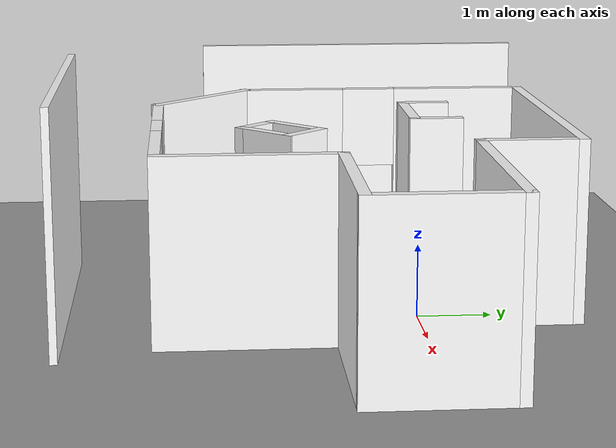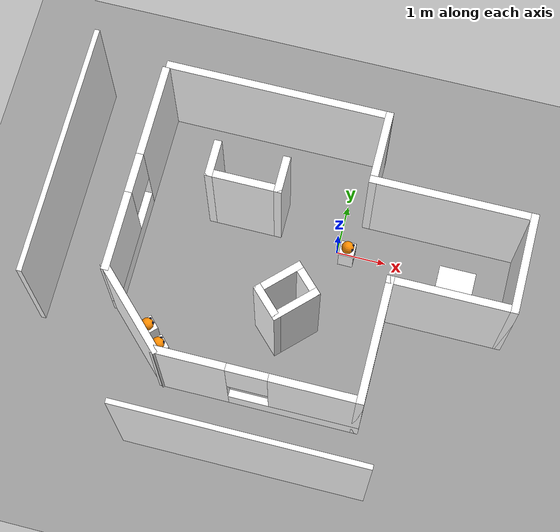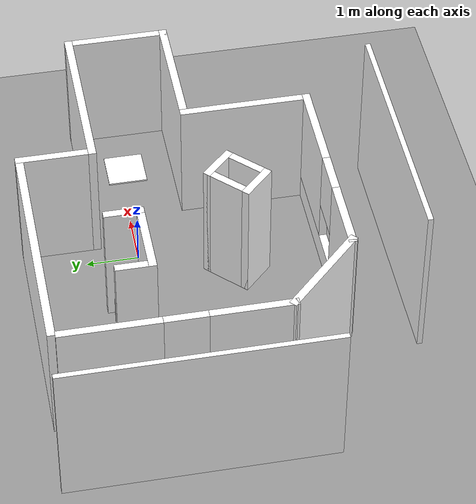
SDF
<sdf version="1.6">
 <world name="default">
  <light name="sun" type="directional">
   <pose>0 0 10 0 -0 0</pose>
   <diffuse>0.8 0.8 0.8 1</diffuse>
   <specular>0.2 0.2 0.2 1</specular>
   <attenuation>
    <range>1000</range>
    <constant>0.9</constant>
    <linear>0.01</linear>
    <quadratic>0.001</quadratic>
   </attenuation>
   <direction>-0.5 0.1 -0.9</direction>
  </light>
  <model name="ground_plane">
   <static>1</static>
   <link name="link">
    <collision name="collision">
     <geometry><plane><normal>0 0 1</normal><size>100 100</size></plane></geometry>
     <surface><friction><ode><mu>100</mu><mu2>50</mu2></ode></friction></surface>
    </collision>
    <visual name="visual">
     <cast_shadows>0</cast_shadows>
     <geometry><plane><normal>0 0 1</normal><size>100 100</size></plane></geometry>
     <material>
      <ambient>1 0 0 1</ambient>
      <diffuse>0.6 0.6 0.6 1</diffuse>
      <specular>0.1 0.1 0.1 1</specular>
     </material>
    </visual>
   </link>
  </model>
  <gravity>0 0 -9.8</gravity>
  <magnetic_field>6e-06 2.3e-05 -4.2e-05</magnetic_field>
  <atmosphere type="adiabatic"/>
  <physics name="default_physics" default="0" type="ode">
   <max_step_size>0.001</max_step_size>
   <real_time_factor>1</real_time_factor>
   <real_time_update_rate>1000</real_time_update_rate>
  </physics>
  <scene><ambient>0.4 0.4 0.4 1</ambient><background>0.7 0.7 0.7 1</background><shadows>1</shadows></scene>
  <audio><device>default</device></audio>
  <spherical_coordinates>
   <surface_model>EARTH_WGS84</surface_model>
   <latitude_deg>0</latitude_deg>
   <longitude_deg>0</longitude_deg>
   <elevation>0</elevation>
   <heading_deg>0</heading_deg>
  </spherical_coordinates>
  <model name="room">
   <pose>-0.22644 -0.704241 0 0 -0 0</pose>
   <link name="Wall_18">
    <pose>-3.73854 0.598681 0 0 -0 -1.5708</pose>
    <visual name="Wall_18_Visual_0">
     <pose>-1.19247 0 1.25 0 -0 0</pose>
     <geometry><box><size>1.86506 0.15 2.5</size></box></geometry>
     <material>
      <ambient>1 1 1 1</ambient>
      <diffuse>1 1 1 1</diffuse>
      <specular>0 0 0 1</specular>
      <pbr><metal><albedo_map>../models/bricks.png</albedo_map></metal></pbr>
     </material>
     <meta><layer>0</layer></meta>
    </visual>
    <collision name="Wall_18_Collision_0">
     <geometry><box><size>1.86506 0.15 2.5</size></box></geometry>
     <pose>-1.19247 0 1.25 0 -0 0</pose>
    </collision>
    <visual name="Wall_18_Visual_1">
     <pose>0.93253 0 0.25 0 -0 0</pose>
     <geometry><box><size>2.38494 0.15 0.5</size></box></geometry>
     <material>
      <ambient>1 1 1 1</ambient>
      <diffuse>1 1 1 1</diffuse>
      <specular>0 0 0 1</specular>
      <pbr><metal><albedo_map>../models/bricks.png</albedo_map></metal></pbr>
     </material>
     <meta><layer>0</layer></meta>
    </visual>
    <collision name="Wall_18_Collision_1">
     <geometry><box><size>2.38494 0.15 0.5</size></box></geometry>
     <pose>0.93253 0 0.25 0 -0 0</pose>
    </collision>
    <visual name="Wall_18_Visual_2">
     <pose>1.33253 0 1.5 0 -0 0</pose>
     <geometry><box><size>1.58494 0.15 2</size></box></geometry>
     <material>
      <ambient>1 1 1 1</ambient>
      <diffuse>1 1 1 1</diffuse>
      <specular>0 0 0 1</specular>
      <pbr><metal><albedo_map>../models/bricks.png</albedo_map></metal></pbr>
     </material>
     <meta><layer>0</layer></meta>
    </visual>
    <collision name="Wall_18_Collision_2">
     <geometry><box><size>1.58494 0.15 2</size></box></geometry>
     <pose>1.33253 0 1.5 0 -0 0</pose>
    </collision>
    <visual name="Wall_18_Visual_3">
     <pose>0.14006 0 1.9 0 -0 0</pose>
     <geometry><box><size>0.8 0.15 1.2</size></box></geometry>
     <material>
      <ambient>1 1 1 1</ambient>
      <diffuse>1 1 1 1</diffuse>
      <specular>0 0 0 1</specular>
      <pbr><metal><albedo_map>../models/bricks.png</albedo_map></metal></pbr>
     </material>
     <meta><layer>0</layer></meta>
    </visual>
    <collision name="Wall_18_Collision_3">
     <geometry><box><size>0.8 0.15 1.2</size></box></geometry>
     <pose>0.14006 0 1.9 0 -0 0</pose>
    </collision>
   </link>
   <link name="Wall_19">
    <collision name="Wall_19_Collision">
     <geometry><box><size>2 0.15 2.5</size></box></geometry>
     <pose>0 0 1.25 0 -0 0</pose>
    </collision>
    <visual name="Wall_19_Visual">
     <pose>0 0 1.25 0 -0 0</pose>
     <geometry><box><size>2 0.15 2.5</size></box></geometry>
     <material>
      <ambient>1 1 1 1</ambient>
      <diffuse>1 1 1 1</diffuse>
      <specular>0 0 0 1</specular>
      <pbr><metal><albedo_map>../models/bricks.png</albedo_map></metal></pbr>
     </material>
     <meta><layer>0</layer></meta>
    </visual>
    <pose>-3.08447 -2.10539 0 0 -0 -0.785398</pose>
   </link>
   <link name="Wall_20">
    <pose>-0.505393 -2.75947 0 0 -0 0</pose>
    <visual name="Wall_20_Visual_0">
     <pose>-1.2957 0 1.25 0 -0 0</pose>
     <geometry><box><size>1.4086 0.15 2.5</size></box></geometry>
     <material>
      <ambient>1 1 1 1</ambient>
      <diffuse>1 1 1 1</diffuse>
      <specular>0 0 0 1</specular>
      <pbr><metal><albedo_map>../models/bricks.png</albedo_map></metal></pbr>
     </material>
     <meta><layer>0</layer></meta>
    </visual>
    <collision name="Wall_20_Collision_0">
     <geometry><box><size>1.4086 0.15 2.5</size></box></geometry>
     <pose>-1.2957 0 1.25 0 -0 0</pose>
    </collision>
    <visual name="Wall_20_Visual_1">
     <pose>0.704301 0 0.25 0 -0 0</pose>
     <geometry><box><size>2.5914 0.15 0.5</size></box></geometry>
     <material>
      <ambient>1 1 1 1</ambient>
      <diffuse>1 1 1 1</diffuse>
      <specular>0 0 0 1</specular>
      <pbr><metal><albedo_map>../models/bricks.png</albedo_map></metal></pbr>
     </material>
     <meta><layer>0</layer></meta>
    </visual>
    <collision name="Wall_20_Collision_1">
     <geometry><box><size>2.5914 0.15 0.5</size></box></geometry>
     <pose>0.704301 0 0.25 0 -0 0</pose>
    </collision>
    <visual name="Wall_20_Visual_2">
     <pose>1.1043 0 1.5 0 -0 0</pose>
     <geometry><box><size>1.7914 0.15 2</size></box></geometry>
     <material>
      <ambient>1 1 1 1</ambient>
      <diffuse>1 1 1 1</diffuse>
      <specular>0 0 0 1</specular>
      <pbr><metal><albedo_map>../models/bricks.png</albedo_map></metal></pbr>
     </material>
     <meta><layer>0</layer></meta>
    </visual>
    <collision name="Wall_20_Collision_2">
     <geometry><box><size>1.7914 0.15 2</size></box></geometry>
     <pose>1.1043 0 1.5 0 -0 0</pose>
    </collision>
    <visual name="Wall_20_Visual_3">
     <pose>-0.191398 0 1.9 0 -0 0</pose>
     <geometry><box><size>0.8 0.15 1.2</size></box></geometry>
     <material>
      <ambient>1 1 1 1</ambient>
      <diffuse>1 1 1 1</diffuse>
      <specular>0 0 0 1</specular>
      <pbr><metal><albedo_map>../models/bricks.png</albedo_map></metal></pbr>
     </material>
     <meta><layer>0</layer></meta>
    </visual>
    <collision name="Wall_20_Collision_3">
     <geometry><box><size>0.8 0.15 1.2</size></box></geometry>
     <pose>-0.191398 0 1.9 0 -0 0</pose>
    </collision>
   </link>
   <link name="Wall_21">
    <collision name="Wall_21_Collision">
     <geometry><box><size>2.5 0.15 2.5</size></box></geometry>
     <pose>0 0 1.25 0 -0 0</pose>
    </collision>
    <visual name="Wall_21_Visual">
     <pose>0 0 1.25 0 -0 0</pose>
     <geometry><box><size>2.5 0.15 2.5</size></box></geometry>
     <material>
      <ambient>1 1 1 1</ambient>
      <diffuse>1 1 1 1</diffuse>
      <specular>0 0 0 1</specular>
      <pbr><metal><albedo_map>../models/bricks.png</albedo_map></metal></pbr>
     </material>
     <meta><layer>0</layer></meta>
    </visual>
    <pose>1.41961 -1.58447 0 0 -0 1.5708</pose>
   </link>
   <link name="Wall_22">
    <collision name="Wall_22_Collision">
     <geometry><box><size>2.5 0.15 2.5</size></box></geometry>
     <pose>0 0 1.25 0 -0 0</pose>
    </collision>
    <visual name="Wall_22_Visual">
     <pose>0 0 1.25 0 -0 0</pose>
     <geometry><box><size>2.5 0.15 2.5</size></box></geometry>
     <material>
      <ambient>1 1 1 1</ambient>
      <diffuse>1 1 1 1</diffuse>
      <specular>0 0 0 1</specular>
      <pbr><metal><albedo_map>../models/bricks.png</albedo_map></metal></pbr>
     </material>
     <meta><layer>0</layer></meta>
    </visual>
    <pose>2.59461 -0.409467 0 0 -0 0</pose>
   </link>
   <link name="Wall_23">
    <collision name="Wall_23_Collision">
     <geometry><box><size>2 0.15 2.5</size></box></geometry>
     <pose>0 0 1.25 0 -0 0</pose>
    </collision>
    <visual name="Wall_23_Visual">
     <pose>0 0 1.25 0 -0 0</pose>
     <geometry><box><size>2 0.15 2.5</size></box></geometry>
     <material>
      <ambient>1 1 1 1</ambient>
      <diffuse>1 1 1 1</diffuse>
      <specular>0 0 0 1</specular>
      <pbr><metal><albedo_map>../models/bricks.png</albedo_map></metal></pbr>
     </material>
     <meta><layer>0</layer></meta>
    </visual>
    <pose>3.76961 0.515533 0 0 -0 1.5708</pose>
   </link>
   <link name="Wall_24">
    <collision name="Wall_24_Collision">
     <geometry><box><size>3.25 0.15 2.5</size></box></geometry>
     <pose>0 0 1.25 0 -0 0</pose>
    </collision>
    <visual name="Wall_24_Visual">
     <pose>0 0 1.25 0 -0 0</pose>
     <geometry><box><size>3.25 0.15 2.5</size></box></geometry>
     <material>
      <ambient>1 1 1 1</ambient>
      <diffuse>1 1 1 1</diffuse>
      <specular>0 0 0 1</specular>
      <pbr><metal><albedo_map>../models/bricks.png</albedo_map></metal></pbr>
     </material>
     <meta><layer>0</layer></meta>
    </visual>
    <pose>2.21961 1.44053 0 0 -0 3.14159</pose>
   </link>
   <link name="Wall_25">
    <collision name="Wall_25_Collision">
     <geometry><box><size>1.5 0.15 2.5</size></box></geometry>
     <pose>0 0 1.25 0 -0 0</pose>
    </collision>
    <visual name="Wall_25_Visual">
     <pose>0 0 1.25 0 -0 0</pose>
     <geometry><box><size>1.5 0.15 2.5</size></box></geometry>
     <material>
      <ambient>1 1 1 1</ambient>
      <diffuse>1 1 1 1</diffuse>
      <specular>0 0 0 1</specular>
      <pbr><metal><albedo_map>../models/bricks.png</albedo_map></metal></pbr>
     </material>
     <meta><layer>0</layer></meta>
    </visual>
    <pose>0.669607 2.11553 0 0 -0 1.5708</pose>
   </link>
   <link name="Wall_26">
    <collision name="Wall_26_Collision">
     <geometry><box><size>4.5 0.15 2.5</size></box></geometry>
     <pose>0 0 1.25 0 -0 0</pose>
    </collision>
    <visual name="Wall_26_Visual">
     <pose>0 0 1.25 0 -0 0</pose>
     <geometry><box><size>4.5 0.15 2.5</size></box></geometry>
     <material>
      <ambient>1 1 1 1</ambient>
      <diffuse>1 1 1 1</diffuse>
      <specular>0 0 0 1</specular>
      <pbr><metal><albedo_map>../models/bricks.png</albedo_map></metal></pbr>
     </material>
     <meta><layer>0</layer></meta>
    </visual>
    <pose>-1.50539 2.79053 0 0 -0 3.14159</pose>
   </link>
   <link name="Wall_28">
    <collision name="Wall_28_Collision">
     <geometry><box><size>1 0.15 2.5</size></box></geometry>
     <pose>0 0 1.25 0 -0 0</pose>
    </collision>
    <visual name="Wall_28_Visual">
     <pose>0 0 1.25 0 -0 0</pose>
     <geometry><box><size>1 0.15 2.5</size></box></geometry>
     <material>
      <ambient>1 1 1 1</ambient>
      <diffuse>1 1 1 1</diffuse>
      <specular>0 0 0 1</specular>
      <pbr><metal><albedo_map>../models/wood.jpg</albedo_map></metal></pbr>
     </material>
     <meta><layer>0</layer></meta>
    </visual>
    <pose>-0.586675 -0.876095 0 0 -0 -2.35619</pose>
   </link>
   <link name="Wall_29">
    <collision name="Wall_29_Collision">
     <geometry><box><size>0.75 0.15 2.5</size></box></geometry>
     <pose>0 0 1.25 0 -0 0</pose>
    </collision>
    <visual name="Wall_29_Visual">
     <pose>0 0 1.25 0 -0 0</pose>
     <geometry><box><size>0.75 0.15 2.5</size></box></geometry>
     <material>
      <ambient>1 1 1 1</ambient>
      <diffuse>1 1 1 1</diffuse>
      <specular>0 0 0 1</specular>
      <pbr><metal><albedo_map>../models/wood.jpg</albedo_map></metal></pbr>
     </material>
     <meta><layer>0</layer></meta>
    </visual>
    <pose>-0.675063 -1.38875 0 0 -0 -0.785398</pose>
   </link>
   <link name="Wall_30">
    <collision name="Wall_30_Collision">
     <geometry><box><size>1 0.15 2.5</size></box></geometry>
     <pose>0 0 1.25 0 -0 0</pose>
    </collision>
    <visual name="Wall_30_Visual">
     <pose>0 0 1.25 0 -0 0</pose>
     <geometry><box><size>1 0.15 2.5</size></box></geometry>
     <material>
      <ambient>1 1 1 1</ambient>
      <diffuse>1 1 1 1</diffuse>
      <specular>0 0 0 1</specular>
      <pbr><metal><albedo_map>../models/wood.jpg</albedo_map></metal></pbr>
     </material>
     <meta><layer>0</layer></meta>
    </visual>
    <pose>-0.162411 -1.30036 0 0 -0 0.785398</pose>
   </link>
   <link name="Wall_31">
    <collision name="Wall_31_Collision">
     <geometry><box><size>0.75 0.15 2.5</size></box></geometry>
     <pose>0 0 1.25 0 -0 0</pose>
    </collision>
    <visual name="Wall_31_Visual">
     <pose>0 0 1.25 0 -0 0</pose>
     <geometry><box><size>0.75 0.15 2.5</size></box></geometry>
     <material>
      <ambient>1 1 1 1</ambient>
      <diffuse>1 1 1 1</diffuse>
      <specular>0 0 0 1</specular>
      <pbr><metal><albedo_map>../models/wood.jpg</albedo_map></metal></pbr>
     </material>
     <meta><layer>0</layer></meta>
    </visual>
    <pose>-0.074023 -0.787706 0 0 -0 2.35619</pose>
   </link>
   <link name="Wall_33">
    <collision name="Wall_33_Collision">
     <geometry><box><size>0.75 0.15 2.5</size></box></geometry>
     <pose>0 0 1.25 0 -0 0</pose>
    </collision>
    <visual name="Wall_33_Visual">
     <pose>0 0 1.25 0 -0 0</pose>
     <geometry><box><size>0.75 0.15 2.5</size></box></geometry>
     <material>
      <ambient>1 1 1 1</ambient>
      <diffuse>1 1 1 1</diffuse>
      <specular>0 0 0 1</specular>
      <pbr><metal><albedo_map>../models/ceiling_tiled.jpg</albedo_map></metal></pbr>
     </material>
     <meta><layer>0</layer></meta>
    </visual>
    <pose>-2.36975 1.11677 0 0 -0 -1.5708</pose>
   </link>
   <link name="Wall_34">
    <collision name="Wall_34_Collision">
     <geometry><box><size>1.5 0.15 2.5</size></box></geometry>
     <pose>0 0 1.25 0 -0 0</pose>
    </collision>
    <visual name="Wall_34_Visual">
     <pose>0 0 1.25 0 -0 0</pose>
     <geometry><box><size>1.5 0.15 2.5</size></box></geometry>
     <material>
      <ambient>1 1 1 1</ambient>
      <diffuse>1 1 1 1</diffuse>
      <specular>0 0 0 1</specular>
      <pbr><metal><albedo_map>../models/ceiling_tiled.jpg</albedo_map></metal></pbr>
     </material>
     <meta><layer>0</layer></meta>
    </visual>
    <pose>-1.69475 0.816772 0 0 -0 0</pose>
   </link>
   <link name="Wall_35">
    <collision name="Wall_35_Collision">
     <geometry><box><size>0.75 0.15 2.5</size></box></geometry>
     <pose>0 0 1.25 0 -0 0</pose>
    </collision>
    <visual name="Wall_35_Visual">
     <pose>0 0 1.25 0 -0 0</pose>
     <geometry><box><size>0.75 0.15 2.5</size></box></geometry>
     <material>
      <ambient>1 1 1 1</ambient>
      <diffuse>1 1 1 1</diffuse>
      <specular>0 0 0 1</specular>
      <pbr><metal><albedo_map>../models/ceiling_tiled.jpg</albedo_map></metal></pbr>
     </material>
     <meta><layer>0</layer></meta>
    </visual>
    <pose>-1.01975 1.11677 0 0 -0 1.5708</pose>
   </link>
   <static>1</static>
  </model>
  <model name="View 1">
   <static>1</static>
   <link name="view1_link">
    <visual name="view_visual1">
     <geometry><box><size>4.8 0.1 3.2</size></box></geometry>
     <material>
      <ambient>1 1 1 1</ambient>
      <diffuse>1 1 1 1</diffuse>
      <specular>0 0 0 1</specular>
      <emissive>0 0 0 0</emissive>
      <pbr><metal><albedo_map>../models/view1/materials/textures/jmu_view1.jpg</albedo_map></metal></pbr>
     </material>
    </visual>
   </link>
   <pose>-0.724575 -4.72804 1.59475 0 -0 0</pose>
  </model>
  <model name="View 1_0">
   <static>1</static>
   <link name="view1_link">
    <visual name="view_visual1">
     <geometry><box><size>5 0.1 3</size></box></geometry>
     <material>
      <ambient>1 1 1 1</ambient>
      <diffuse>1 1 1 1</diffuse>
      <specular>0 0 0 1</specular>
      <emissive>0 0 0 0</emissive>
      <pbr><metal><albedo_map>../models/view2/materials/textures/jmu_view2.jpg</albedo_map></metal></pbr>
     </material>
    </visual>
   </link>
   <pose>-5.35459 -0.27818 1.51532 0 0 -1.57102</pose>
  </model>
  <model name="Victim 1">
   <static>1</static>
   <link name="robot_link">
    <pose>0 0 0.3 0 -0 0</pose>
    <collision name="body_collision"><geometry><box><size>0.3 0.3 0.6</size></box></geometry></collision>
    <visual name="wheel1_visual">
     <pose>0.1 -0.05 0.45 0 1.57079 0</pose>
     <geometry><sphere><radius>0.025</radius></sphere></geometry>
     <material>
      <ambient>0.1 0.1 0.1 1</ambient>
      <diffuse>0.1 0.1 0.2 1</diffuse>
      <specular>0 0 0 0</specular>
      <emissive>0 0 0 1</emissive>
     </material>
    </visual>
    <visual name="wheel2_visual">
     <pose>0.1 0.05 0.45 0 1.57079 0</pose>
     <geometry><sphere><radius>0.025</radius></sphere></geometry>
     <material>
      <ambient>0.1 0.1 0.1 1</ambient>
      <diffuse>0.1 0.1 0.2 1</diffuse>
      <specular>0 0 0 0</specular>
      <emissive>0 0 0 1</emissive>
     </material>
    </visual>
    <visual name="body_visual_out">
     <geometry><box><size>0.3 0.3 0.6</size></box></geometry>
     <material>
      <ambient>1 1 1 1</ambient>
      <diffuse>1 1 1 1</diffuse>
      <specular>0 0 0 0</specular>
      <emissive>0 0 0 1</emissive>
     </material>
    </visual>
    <visual name="body_visual1">
     <pose>0.03 0 0 0 -0 0</pose>
     <geometry><box><size>0.25 0.25 0.25</size></box></geometry>
     <material>
      <ambient>1 1 1 1</ambient>
      <diffuse>1 1 1 1</diffuse>
      <specular>0.2 0.2 0.2 1</specular>
      <pbr><metal><albedo_map>../models/victim1/materials/textures/vic1.png</albedo_map></metal></pbr>
     </material>
    </visual>
    <visual name="head_visual">
     <pose>0 0 0.4 0 0 -2.5</pose>
     <geometry><sphere><radius>0.125</radius></sphere></geometry>
     <material>
      <ambient>1 0.55 0 1</ambient>
      <diffuse>1 0.55 0 1</diffuse>
      <specular>0 0 0 0</specular>
      <emissive>0 0 0 1</emissive>
     </material>
    </visual>
   </link>
   <pose>-1.54176 0.469752 0 0 -0 2.39815</pose>
  </model>
  <model name="Victim 2">
   <static>1</static>
   <link name="robot_link">
    <pose>0 0 0.3 0 -0 0</pose>
    <collision name="body_collision"><geometry><box><size>0.3 0.3 0.6</size></box></geometry></collision>
    <visual name="wheel1_visual">
     <pose>0.1 -0.05 0.45 0 1.57079 0</pose>
     <geometry><sphere><radius>0.025</radius></sphere></geometry>
     <material>
      <ambient>0.1 0.1 0.1 1</ambient>
      <diffuse>0.1 0.1 0.2 1</diffuse>
      <specular>0 0 0 0</specular>
      <emissive>0 0 0 1</emissive>
     </material>
    </visual>
    <visual name="wheel2_visual">
     <pose>0.1 0.05 0.45 0 1.57079 0</pose>
     <geometry><sphere><radius>0.025</radius></sphere></geometry>
     <material>
      <ambient>0.1 0.1 0.1 1</ambient>
      <diffuse>0.1 0.1 0.2 1</diffuse>
      <specular>0 0 0 0</specular>
      <emissive>0 0 0 1</emissive>
     </material>
    </visual>
    <visual name="body_visual_out">
     <geometry><box><size>0.3 0.3 0.6</size></box></geometry>
     <material>
      <ambient>1 1 1 1</ambient>
      <diffuse>1 1 1 1</diffuse>
      <specular>0 0 0 0</specular>
      <emissive>0 0 0 1</emissive>
     </material>
    </visual>
    <visual name="body_visual1">
     <pose>0.03 0 0 0 -0 0</pose>
     <geometry><box><size>0.25 0.25 0.25</size></box></geometry>
     <material>
      <ambient>1 1 1 1</ambient>
      <diffuse>1 1 1 1</diffuse>
      <specular>0 0 0 1</specular>
      <pbr><metal><albedo_map>../models/victim2/materials/textures/vic2.png</albedo_map></metal></pbr>
     </material>
    </visual>
    <visual name="head_visual">
     <pose>0 0 0.4 0 0 -2.5</pose>
     <geometry><sphere><radius>0.125</radius></sphere></geometry>
     <material>
      <ambient>1 0.55 0 1</ambient>
      <diffuse>1 0.55 0 1</diffuse>
      <specular>0 0 0 0</specular>
      <emissive>0 0 0 1</emissive>
     </material>
    </visual>
   </link>
   <pose>0.218592 -0.07867 0 0 -0 0</pose>
  </model>
  <model name="Victim 3">
   <static>1</static>
   <link name="robot_link">
    <pose>0 0 0.3 0 -0 0</pose>
    <collision name="body_collision"><geometry><box><size>0.3 0.3 0.6</size></box></geometry></collision>
    <visual name="wheel1_visual">
     <pose>0.1 -0.05 0.45 0 1.57079 0</pose>
     <geometry><sphere><radius>0.025</radius></sphere></geometry>
     <material>
      <ambient>0.1 0.1 0.1 1</ambient>
      <diffuse>0.1 0.1 0.2 1</diffuse>
      <specular>0 0 0 0</specular>
      <emissive>0 0 0 1</emissive>
     </material>
    </visual>
    <visual name="wheel2_visual">
     <pose>0.1 0.05 0.45 0 1.57079 0</pose>
     <geometry><sphere><radius>0.025</radius></sphere></geometry>
     <material>
      <ambient>0.1 0.1 0.1 1</ambient>
      <diffuse>0.1 0.1 0.2 1</diffuse>
      <specular>0 0 0 0</specular>
      <emissive>0 0 0 1</emissive>
     </material>
    </visual>
    <visual name="body_visual_out">
     <geometry><box><size>0.3 0.3 0.6</size></box></geometry>
     <material>
      <ambient>1 1 1 1</ambient>
      <diffuse>1 1 1 1</diffuse>
      <specular>0 0 0 0</specular>
      <emissive>0 0 0 1</emissive>
     </material>
    </visual>
    <visual name="body_visual1">
     <pose>0.03 0 0 0 -0 0</pose>
     <geometry><box><size>0.25 0.25 0.25</size></box></geometry>
     <material>
      <ambient>1 1 1 1</ambient>
      <diffuse>1 1 1 1</diffuse>
      <specular>0 0 0 1</specular>
      <pbr><metal><albedo_map>../models/victim3/materials/textures/vic3.png</albedo_map></metal></pbr>
     </material>
    </visual>
    <visual name="head_visual">
     <pose>0 0 0.4 0 0 -2.5</pose>
     <geometry><sphere><radius>0.125</radius></sphere></geometry>
     <material>
      <ambient>1 0.55 0 1</ambient>
      <diffuse>1 0.55 0 1</diffuse>
      <specular>0 0 0 0</specular>
      <emissive>0 0 0 1</emissive>
     </material>
    </visual>
   </link>
   <pose>-3.2013 -2.57448 0 0 -0 0.763221</pose>
  </model>
  <model name="Victim 4">
   <static>1</static>
   <link name="robot_link">
    <pose>0 0 0.3 0 -0 0</pose>
    <collision name="body_collision"><geometry><box><size>0.3 0.3 0.6</size></box></geometry></collision>
    <visual name="wheel1_visual">
     <pose>0.1 -0.05 0.45 0 1.57079 0</pose>
     <geometry><sphere><radius>0.025</radius></sphere></geometry>
     <material>
      <ambient>0.1 0.1 0.1 1</ambient>
      <diffuse>0.1 0.1 0.2 1</diffuse>
      <specular>0 0 0 0</specular>
      <emissive>0 0 0 1</emissive>
     </material>
    </visual>
    <visual name="wheel2_visual">
     <pose>0.1 0.05 0.45 0 1.57079 0</pose>
     <geometry><sphere><radius>0.025</radius></sphere></geometry>
     <material>
      <ambient>0.1 0.1 0.1 1</ambient>
      <diffuse>0.1 0.1 0.2 1</diffuse>
      <specular>0 0 0 0</specular>
      <emissive>0 0 0 1</emissive>
     </material>
    </visual>
    <visual name="body_visual_out">
     <geometry><box><size>0.3 0.3 0.6</size></box></geometry>
     <material>
      <ambient>1 1 1 1</ambient>
      <diffuse>1 1 1 1</diffuse>
      <specular>0 0 0 0</specular>
      <emissive>0 0 0 1</emissive>
     </material>
    </visual>
    <visual name="body_visual1">
     <pose>0.03 0 0 0 -0 0</pose>
     <geometry><box><size>0.25 0.25 0.25</size></box></geometry>
     <material>
      <ambient>1 1 1 1</ambient>
      <diffuse>1 1 1 1</diffuse>
      <specular>0 0 0 1</specular>
      <pbr><metal><albedo_map>../models/victim4/materials/textures/vic4.png</albedo_map></metal></pbr>
     </material>
    </visual>
    <visual name="head_visual">
     <pose>0 0 0.4 0 0 -2.5</pose>
     <geometry><sphere><radius>0.125</radius></sphere></geometry>
     <material>
      <ambient>1 0.55 0 1</ambient>
      <diffuse>1 0.55 0 1</diffuse>
      <specular>0 0 0 0</specular>
      <emissive>0 0 0 1</emissive>
     </material>
    </visual>
   </link>
   <pose>-2.8923 -2.89492 0 0 -0 0.758573</pose>
  </model>
  <model name="Start Zone">
   <static>1</static>
   <link name="view1_link">
    <visual name="view_visual1">
     <geometry><box><size>0.75 0.75 0.04</size></box></geometry>
     <material>
      <ambient>1 1 1 1</ambient>
      <diffuse>1 1 1 1</diffuse>
      <specular>0 0 0 0</specular>
      <emissive>0 0 0 1</emissive>
     </material>
    </visual>
   </link>
   <pose>2.46567 -0.132775 0 0 -0 0</pose>
  </model>
 </world>
</sdf>
